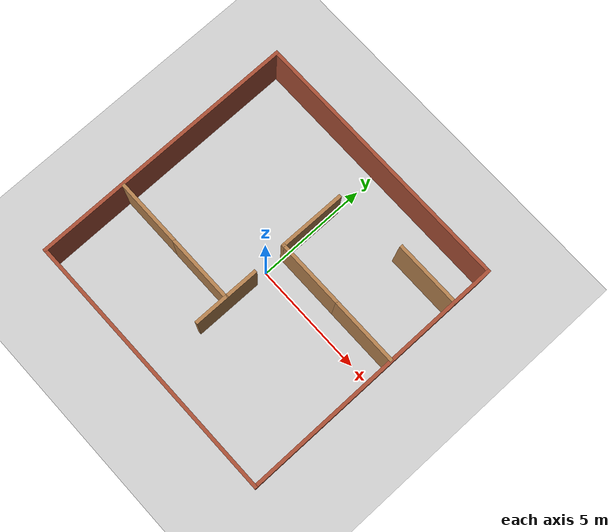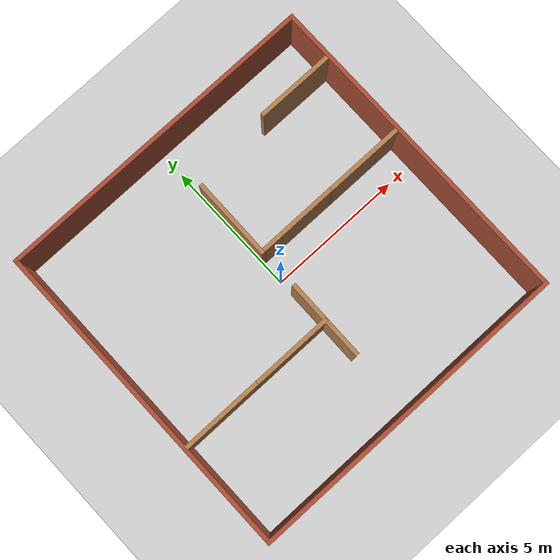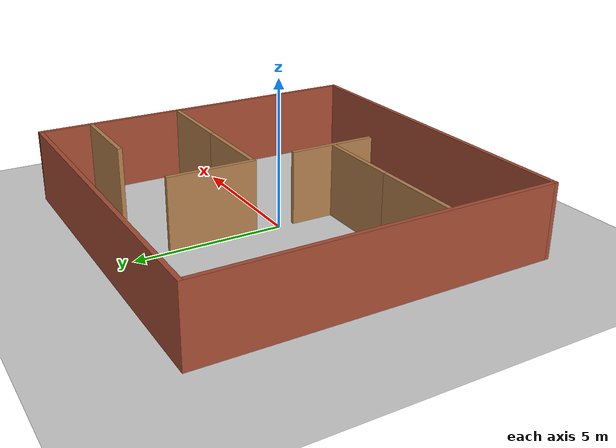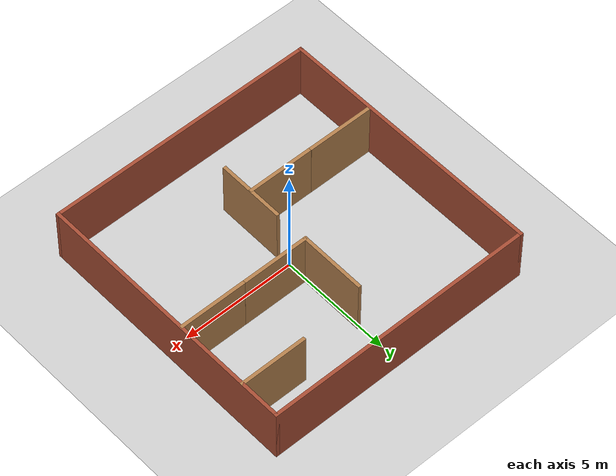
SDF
<sdf version="1.7">
 <world name="default">
  <light name="sun" type="directional">
   <pose>0 0 10 0 -0 0</pose>
   <diffuse>0.8 0.8 0.8 1</diffuse>
   <specular>0.2 0.2 0.2 1</specular>
   <attenuation>
    <range>1000</range>
    <constant>0.9</constant>
    <linear>0.01</linear>
    <quadratic>0.001</quadratic>
   </attenuation>
   <direction>-0.5 0.1 -0.9</direction>
   <spot><inner_angle>0</inner_angle><outer_angle>0</outer_angle><falloff>0</falloff></spot>
  </light>
  <model name="ground_plane">
   <static>1</static>
   <link name="link">
    <collision name="collision">
     <geometry><plane><normal>0 0 1</normal><size>100 100</size></plane></geometry>
     <surface><friction><ode><mu>100</mu><mu2>50</mu2></ode></friction></surface>
    </collision>
    <visual name="visual">
     <cast_shadows>0</cast_shadows>
     <geometry><plane><normal>0 0 1</normal><size>100 100</size></plane></geometry>
     <material>
      <script><uri>file://media/materials/scripts/gazebo.material</uri><name>Gazebo/Grey</name></script>
     </material>
    </visual>
   </link>
  </model>
  <gravity>0 0 -9.8</gravity>
  <magnetic_field>6e-06 2.3e-05 -4.2e-05</magnetic_field>
  <atmosphere type="adiabatic"/>
  <physics type="ode">
   <max_step_size>0.001</max_step_size>
   <real_time_factor>1</real_time_factor>
   <real_time_update_rate>1000</real_time_update_rate>
  </physics>
  <scene><ambient>0.4 0.4 0.4 1</ambient><background>0.7 0.7 0.7 1</background><shadows>1</shadows></scene>
  <spherical_coordinates>
   <surface_model>EARTH_WGS84</surface_model>
   <latitude_deg>0</latitude_deg>
   <longitude_deg>0</longitude_deg>
   <elevation>0</elevation>
   <heading_deg>0</heading_deg>
  </spherical_coordinates>
  <model name="Untitled_0">
   <pose>0.021374 0.0183 0 0 -0 0</pose>
   <link name="Wall_13">
    <collision name="Wall_13_Collision">
     <geometry><box><size>12 0.15 2.5</size></box></geometry>
     <pose>0 0 1.25 0 -0 0</pose>
    </collision>
    <visual name="Wall_13_Visual">
     <pose>0 0 1.25 0 -0 0</pose>
     <geometry><box><size>12 0.15 2.5</size></box></geometry>
     <material>
      <script><uri>file://media/materials/scripts/gazebo.material</uri><name>Gazebo/Bricks</name></script>
      <ambient>1 1 1 1</ambient>
     </material>
     <meta><layer>0</layer></meta>
    </visual>
    <pose>-0 -5.925 0 0 -0 0</pose>
   </link>
   <link name="Wall_15">
    <collision name="Wall_15_Collision">
     <geometry><box><size>12 0.15 2.5</size></box></geometry>
     <pose>0 0 1.25 0 -0 0</pose>
    </collision>
    <visual name="Wall_15_Visual">
     <pose>0 0 1.25 0 -0 0</pose>
     <geometry><box><size>12 0.15 2.5</size></box></geometry>
     <material>
      <script><uri>file://media/materials/scripts/gazebo.material</uri><name>Gazebo/Bricks</name></script>
      <ambient>1 1 1 1</ambient>
     </material>
     <meta><layer>0</layer></meta>
    </visual>
    <pose>-5.925 0 0 0 -0 1.5708</pose>
   </link>
   <link name="Wall_16">
    <collision name="Wall_16_Collision">
     <geometry><box><size>12 0.15 2.5</size></box></geometry>
     <pose>0 0 1.25 0 -0 0</pose>
    </collision>
    <visual name="Wall_16_Visual">
     <pose>0 0 1.25 0 -0 0</pose>
     <geometry><box><size>12 0.15 2.5</size></box></geometry>
     <material>
      <script><uri>file://media/materials/scripts/gazebo.material</uri><name>Gazebo/Bricks</name></script>
      <ambient>1 1 1 1</ambient>
     </material>
     <meta><layer>0</layer></meta>
    </visual>
    <pose>-0 5.925 0 0 -0 0</pose>
   </link>
   <link name="Wall_17">
    <collision name="Wall_17_Collision">
     <geometry><box><size>12 0.15 2.5</size></box></geometry>
     <pose>0 0 1.25 0 -0 0</pose>
    </collision>
    <visual name="Wall_17_Visual">
     <pose>0 0 1.25 0 -0 0</pose>
     <geometry><box><size>12 0.15 2.5</size></box></geometry>
     <material>
      <script><uri>file://media/materials/scripts/gazebo.material</uri><name>Gazebo/Bricks</name></script>
      <ambient>1 1 1 1</ambient>
     </material>
     <meta><layer>0</layer></meta>
    </visual>
    <pose>5.925 0 0 0 -0 -1.5708</pose>
   </link>
   <static>1</static>
  </model>
  <model name="Untitled_1">
   <pose>4.54934 2.37628 0 0 -0 0</pose>
   <link name="Wall_19">
    <collision name="Wall_19_Collision">
     <geometry><box><size>3 0.15 2.5</size></box></geometry>
     <pose>0 0 1.25 0 -0 0</pose>
    </collision>
    <visual name="Wall_19_Visual">
     <pose>0 0 1.25 0 -0 0</pose>
     <geometry><box><size>3 0.15 2.5</size></box></geometry>
     <material>
      <script><uri>file://media/materials/scripts/gazebo.material</uri><name>Gazebo/Wood</name></script>
      <ambient>1 1 1 1</ambient>
     </material>
     <meta><layer>0</layer></meta>
    </visual>
    <pose>-0.081303 -1.47358 0 0 -0 0</pose>
   </link>
   <static>1</static>
  </model>
  <model name="Untitled_1_clone">
   <pose>1.58411 2.37826 0 0 -0 0</pose>
   <link name="Wall_19">
    <collision name="Wall_19_Collision">
     <geometry><box><size>3 0.15 2.5</size></box></geometry>
     <pose>0 0 1.25 0 -0 0</pose>
    </collision>
    <visual name="Wall_19_Visual">
     <pose>0 0 1.25 0 -0 0</pose>
     <geometry><box><size>3 0.15 2.5</size></box></geometry>
     <material>
      <script><uri>file://media/materials/scripts/gazebo.material</uri><name>Gazebo/Wood</name></script>
      <ambient>1 1 1 1</ambient>
     </material>
     <meta><layer>0</layer></meta>
    </visual>
    <pose>-0.081303 -1.47358 0 0 -0 0</pose>
   </link>
   <static>1</static>
  </model>
  <model name="Untitled_1_clone_clone">
   <pose>-4.29619 -0.571878 0 0 -0 0</pose>
   <link name="Wall_19">
    <collision name="Wall_19_Collision">
     <geometry><box><size>3 0.15 2.5</size></box></geometry>
     <pose>0 0 1.25 0 -0 0</pose>
    </collision>
    <visual name="Wall_19_Visual">
     <pose>0 0 1.25 0 -0 0</pose>
     <geometry><box><size>3 0.15 2.5</size></box></geometry>
     <material>
      <script><uri>file://media/materials/scripts/gazebo.material</uri><name>Gazebo/Wood</name></script>
      <ambient>1 1 1 1</ambient>
     </material>
     <meta><layer>0</layer></meta>
    </visual>
    <pose>-0.081303 -1.47358 0 0 -0 0</pose>
   </link>
   <static>1</static>
  </model>
  <model name="Untitled_1_clone_clone_clone">
   <pose>-1.34262 -0.575744 0 0 -0 0</pose>
   <link name="Wall_19">
    <collision name="Wall_19_Collision">
     <geometry><box><size>3 0.15 2.5</size></box></geometry>
     <pose>0 0 1.25 0 -0 0</pose>
    </collision>
    <visual name="Wall_19_Visual">
     <pose>0 0 1.25 0 -0 0</pose>
     <geometry><box><size>3 0.15 2.5</size></box></geometry>
     <material>
      <script><uri>file://media/materials/scripts/gazebo.material</uri><name>Gazebo/Wood</name></script>
      <ambient>1 1 1 1</ambient>
     </material>
     <meta><layer>0</layer></meta>
    </visual>
    <pose>-0.081303 -1.47358 0 0 -0 0</pose>
   </link>
   <static>1</static>
  </model>
  <model name="Untitled_1_clone_clone_0">
   <pose>1.50517 2.2358 0 0 0 -1.57874</pose>
   <link name="Wall_19">
    <collision name="Wall_19_Collision">
     <geometry><box><size>3 0.15 2.5</size></box></geometry>
     <pose>0 0 1.25 0 -0 0</pose>
    </collision>
    <visual name="Wall_19_Visual">
     <pose>0 0 1.25 0 -0 0</pose>
     <geometry><box><size>3 0.15 2.5</size></box></geometry>
     <material>
      <script><uri>file://media/materials/scripts/gazebo.material</uri><name>Gazebo/Wood</name></script>
      <ambient>1 1 1 1</ambient>
     </material>
     <meta><layer>0</layer></meta>
    </visual>
    <pose>-0.081303 -1.47358 0 0 -0 0</pose>
   </link>
   <static>1</static>
  </model>
  <model name="Untitled_1_clone_clone_0_clone">
   <pose>1.50864 -2.12968 0 0 0 -1.57874</pose>
   <link name="Wall_19">
    <collision name="Wall_19_Collision">
     <geometry><box><size>3 0.15 2.5</size></box></geometry>
     <pose>0 0 1.25 0 -0 0</pose>
    </collision>
    <visual name="Wall_19_Visual">
     <pose>0 0 1.25 0 -0 0</pose>
     <geometry><box><size>3 0.15 2.5</size></box></geometry>
     <material>
      <script><uri>file://media/materials/scripts/gazebo.material</uri><name>Gazebo/Wood</name></script>
      <ambient>1 1 1 1</ambient>
     </material>
     <meta><layer>0</layer></meta>
    </visual>
    <pose>-0.081303 -1.47358 0 0 -0 0</pose>
   </link>
   <static>1</static>
  </model>
  <model name="Untitled_1_clone_0">
   <pose>4.59689 5.64835 0 0 -0 0</pose>
   <link name="Wall_19">
    <collision name="Wall_19_Collision">
     <geometry><box><size>3 0.15 2.5</size></box></geometry>
     <pose>0 0 1.25 0 -0 0</pose>
    </collision>
    <visual name="Wall_19_Visual">
     <pose>0 0 1.25 0 -0 0</pose>
     <geometry><box><size>3 0.15 2.5</size></box></geometry>
     <material>
      <script><uri>file://media/materials/scripts/gazebo.material</uri><name>Gazebo/Wood</name></script>
      <ambient>1 1 1 1</ambient>
     </material>
     <meta><layer>0</layer></meta>
    </visual>
    <pose>-0.081303 -1.47358 0 0 -0 0</pose>
   </link>
   <static>1</static>
  </model>
 </world>
</sdf>
